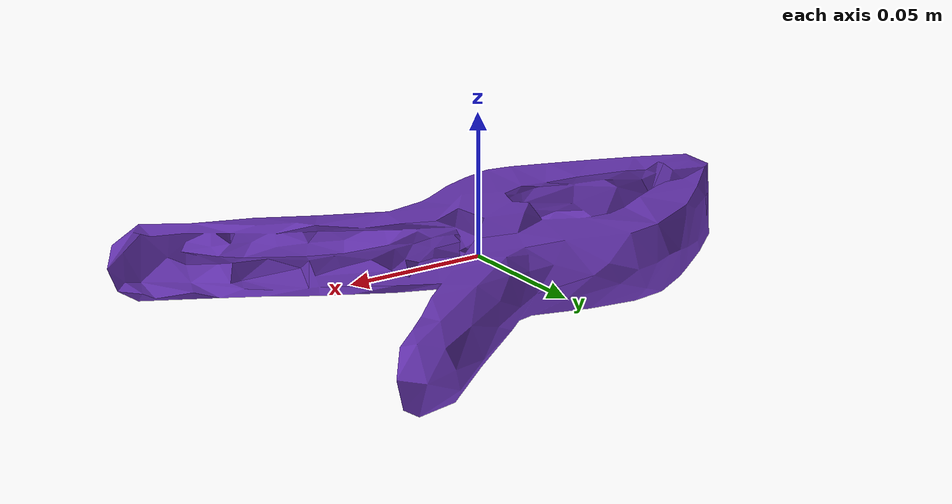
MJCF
<mujoco model="top_watertight_tiny">

  <asset>
    <mesh file="top_watertight_tiny.obj"/>
    <mesh file="top_watertight_tiny_collision_0.obj"/>
    <mesh file="top_watertight_tiny_collision_1.obj"/>
    <mesh file="top_watertight_tiny_collision_2.obj"/>
    <mesh file="top_watertight_tiny_collision_3.obj"/>
    <mesh file="top_watertight_tiny_collision_4.obj"/>
    <mesh file="top_watertight_tiny_collision_5.obj"/>
    <mesh file="top_watertight_tiny_collision_6.obj"/>
    <mesh file="top_watertight_tiny_collision_7.obj"/>
    <mesh file="top_watertight_tiny_collision_8.obj"/>
    <mesh file="top_watertight_tiny_collision_9.obj"/>
    <mesh file="top_watertight_tiny_collision_10.obj"/>
    <mesh file="top_watertight_tiny_collision_11.obj"/>
    <mesh file="top_watertight_tiny_collision_12.obj"/>
    <mesh file="top_watertight_tiny_collision_13.obj"/>
    <mesh file="top_watertight_tiny_collision_14.obj"/>
    <mesh file="top_watertight_tiny_collision_15.obj"/>
    <mesh file="top_watertight_tiny_collision_16.obj"/>
    <mesh file="top_watertight_tiny_collision_17.obj"/>
    <mesh file="top_watertight_tiny_collision_18.obj"/>
    <mesh file="top_watertight_tiny_collision_19.obj"/>
    <mesh file="top_watertight_tiny_collision_20.obj"/>
    <mesh file="top_watertight_tiny_collision_21.obj"/>
    <mesh file="top_watertight_tiny_collision_22.obj"/>
    <mesh file="top_watertight_tiny_collision_23.obj"/>
    <mesh file="top_watertight_tiny_collision_24.obj"/>
    <mesh file="top_watertight_tiny_collision_25.obj"/>
    <mesh file="top_watertight_tiny_collision_26.obj"/>
    <mesh file="top_watertight_tiny_collision_27.obj"/>
    <mesh file="top_watertight_tiny_collision_28.obj"/>
    <mesh file="top_watertight_tiny_collision_29.obj"/>
    <mesh file="top_watertight_tiny_collision_30.obj"/>
    <mesh file="top_watertight_tiny_collision_31.obj"/>
    <mesh file="top_watertight_tiny_collision_32.obj"/>
    <mesh file="top_watertight_tiny_collision_33.obj"/>
    <mesh file="top_watertight_tiny_collision_34.obj"/>
    <mesh file="top_watertight_tiny_collision_35.obj"/>
    <mesh file="top_watertight_tiny_collision_36.obj"/>
    <mesh file="top_watertight_tiny_collision_37.obj"/>
    <mesh file="top_watertight_tiny_collision_38.obj"/>
    <mesh file="top_watertight_tiny_collision_39.obj"/>
    <mesh file="top_watertight_tiny_collision_40.obj"/>
    <mesh file="top_watertight_tiny_collision_41.obj"/>
    <mesh file="top_watertight_tiny_collision_42.obj"/>
    <mesh file="top_watertight_tiny_collision_43.obj"/>
    <mesh file="top_watertight_tiny_collision_44.obj"/>
  </asset>
  <worldbody>
    <body name="top_watertight_tiny">
      <freejoint/>
      <geom solimp="0.90 0.95 0.001" solref="0.02 1.0" density="100" friction="0.95 0.4 0.3" rgba="0.4 0.2 0.7 1" mesh="top_watertight_tiny" group="2" type="mesh" contype="0" conaffinity="0"/>
      <geom solimp="0.90 0.95 0.001" solref="0.02 1.0" density="100" friction="0.95 0.4 0.3" mesh="top_watertight_tiny_collision_0" rgba="0.6692862058523028 0.10845695890546525 0.16505113920831627 1" group="3" type="mesh"/>
      <geom solimp="0.90 0.95 0.001" solref="0.02 1.0" density="100" friction="0.95 0.4 0.3" mesh="top_watertight_tiny_collision_1" rgba="0.2831435461395556 0.41483708267079955 0.7679989196277033 1" group="3" type="mesh"/>
      <geom solimp="0.90 0.95 0.001" solref="0.02 1.0" density="100" friction="0.95 0.4 0.3" mesh="top_watertight_tiny_collision_2" rgba="0.3364125567432267 0.409183538614594 0.7544353324531017 1" group="3" type="mesh"/>
      <geom solimp="0.90 0.95 0.001" solref="0.02 1.0" density="100" friction="0.95 0.4 0.3" mesh="top_watertight_tiny_collision_3" rgba="0.9635463652394096 0.9366260052960367 0.8547682360147899 1" group="3" type="mesh"/>
      <geom solimp="0.90 0.95 0.001" solref="0.02 1.0" density="100" friction="0.95 0.4 0.3" mesh="top_watertight_tiny_collision_4" rgba="0.1855768597915377 0.42894178213192435 0.15799468247967985 1" group="3" type="mesh"/>
      <geom solimp="0.90 0.95 0.001" solref="0.02 1.0" density="100" friction="0.95 0.4 0.3" mesh="top_watertight_tiny_collision_5" rgba="0.7845227375817271 0.00021812241555085876 0.7747267821185437 1" group="3" type="mesh"/>
      <geom solimp="0.90 0.95 0.001" solref="0.02 1.0" density="100" friction="0.95 0.4 0.3" mesh="top_watertight_tiny_collision_6" rgba="0.3277648812251076 0.8683704256148046 0.7173869226529379 1" group="3" type="mesh"/>
      <geom solimp="0.90 0.95 0.001" solref="0.02 1.0" density="100" friction="0.95 0.4 0.3" mesh="top_watertight_tiny_collision_7" rgba="0.6644291472601099 0.9507021678547918 0.48604455137330316 1" group="3" type="mesh"/>
      <geom solimp="0.90 0.95 0.001" solref="0.02 1.0" density="100" friction="0.95 0.4 0.3" mesh="top_watertight_tiny_collision_8" rgba="0.5250556566142492 0.3550164875320113 0.3848988976815907 1" group="3" type="mesh"/>
      <geom solimp="0.90 0.95 0.001" solref="0.02 1.0" density="100" friction="0.95 0.4 0.3" mesh="top_watertight_tiny_collision_9" rgba="0.7680348447795635 0.5570392634005161 0.9702605148002059 1" group="3" type="mesh"/>
      <geom solimp="0.90 0.95 0.001" solref="0.02 1.0" density="100" friction="0.95 0.4 0.3" mesh="top_watertight_tiny_collision_10" rgba="0.5692423320064505 0.6756896201473701 0.8274250876474534 1" group="3" type="mesh"/>
      <geom solimp="0.90 0.95 0.001" solref="0.02 1.0" density="100" friction="0.95 0.4 0.3" mesh="top_watertight_tiny_collision_11" rgba="0.40914576745045195 0.07389423270782725 0.9509166383963242 1" group="3" type="mesh"/>
      <geom solimp="0.90 0.95 0.001" solref="0.02 1.0" density="100" friction="0.95 0.4 0.3" mesh="top_watertight_tiny_collision_12" rgba="0.3435488816522897 0.3123482594332895 0.013387326977379765 1" group="3" type="mesh"/>
      <geom solimp="0.90 0.95 0.001" solref="0.02 1.0" density="100" friction="0.95 0.4 0.3" mesh="top_watertight_tiny_collision_13" rgba="0.15412577940005479 0.30950558158390307 0.5169241736494664 1" group="3" type="mesh"/>
      <geom solimp="0.90 0.95 0.001" solref="0.02 1.0" density="100" friction="0.95 0.4 0.3" mesh="top_watertight_tiny_collision_14" rgba="0.05513106813261004 0.6331098841444155 0.04930660755336591 1" group="3" type="mesh"/>
      <geom solimp="0.90 0.95 0.001" solref="0.02 1.0" density="100" friction="0.95 0.4 0.3" mesh="top_watertight_tiny_collision_15" rgba="0.7222802348137766 0.29009246545922895 0.9531831736505183 1" group="3" type="mesh"/>
      <geom solimp="0.90 0.95 0.001" solref="0.02 1.0" density="100" friction="0.95 0.4 0.3" mesh="top_watertight_tiny_collision_16" rgba="0.3423069346269152 0.18390652302333188 0.10270945665454279 1" group="3" type="mesh"/>
      <geom solimp="0.90 0.95 0.001" solref="0.02 1.0" density="100" friction="0.95 0.4 0.3" mesh="top_watertight_tiny_collision_17" rgba="0.3045826123848471 0.35374613770355 0.5724571574217754 1" group="3" type="mesh"/>
      <geom solimp="0.90 0.95 0.001" solref="0.02 1.0" density="100" friction="0.95 0.4 0.3" mesh="top_watertight_tiny_collision_18" rgba="0.07190081357231326 0.33204479871233816 0.4045225757853831 1" group="3" type="mesh"/>
      <geom solimp="0.90 0.95 0.001" solref="0.02 1.0" density="100" friction="0.95 0.4 0.3" mesh="top_watertight_tiny_collision_19" rgba="0.8939205028070746 0.01229134628823303 0.79004656445743 1" group="3" type="mesh"/>
      <geom solimp="0.90 0.95 0.001" solref="0.02 1.0" density="100" friction="0.95 0.4 0.3" mesh="top_watertight_tiny_collision_20" rgba="0.6702132809548322 0.12257629466259923 0.38512900956127705 1" group="3" type="mesh"/>
      <geom solimp="0.90 0.95 0.001" solref="0.02 1.0" density="100" friction="0.95 0.4 0.3" mesh="top_watertight_tiny_collision_21" rgba="0.3065846088922364 0.87717398533137 0.08459316297472541 1" group="3" type="mesh"/>
      <geom solimp="0.90 0.95 0.001" solref="0.02 1.0" density="100" friction="0.95 0.4 0.3" mesh="top_watertight_tiny_collision_22" rgba="0.3983650532209483 0.9986773937861758 0.6559923150729449 1" group="3" type="mesh"/>
      <geom solimp="0.90 0.95 0.001" solref="0.02 1.0" density="100" friction="0.95 0.4 0.3" mesh="top_watertight_tiny_collision_23" rgba="0.5324878221172643 0.3356200749170182 0.8685699504750006 1" group="3" type="mesh"/>
      <geom solimp="0.90 0.95 0.001" solref="0.02 1.0" density="100" friction="0.95 0.4 0.3" mesh="top_watertight_tiny_collision_24" rgba="0.5933889790450586 0.45878940906198395 0.7836972144959684 1" group="3" type="mesh"/>
      <geom solimp="0.90 0.95 0.001" solref="0.02 1.0" density="100" friction="0.95 0.4 0.3" mesh="top_watertight_tiny_collision_25" rgba="0.6569901841201528 0.6079264093688157 0.836034864724972 1" group="3" type="mesh"/>
      <geom solimp="0.90 0.95 0.001" solref="0.02 1.0" density="100" friction="0.95 0.4 0.3" mesh="top_watertight_tiny_collision_26" rgba="0.41133802007747533 0.5481189897866444 0.6951655081599737 1" group="3" type="mesh"/>
      <geom solimp="0.90 0.95 0.001" solref="0.02 1.0" density="100" friction="0.95 0.4 0.3" mesh="top_watertight_tiny_collision_27" rgba="0.0843177001056673 0.12125584254453836 0.9383648635777316 1" group="3" type="mesh"/>
      <geom solimp="0.90 0.95 0.001" solref="0.02 1.0" density="100" friction="0.95 0.4 0.3" mesh="top_watertight_tiny_collision_28" rgba="0.3072090770733912 0.1789369960573789 0.5895137046771708 1" group="3" type="mesh"/>
      <geom solimp="0.90 0.95 0.001" solref="0.02 1.0" density="100" friction="0.95 0.4 0.3" mesh="top_watertight_tiny_collision_29" rgba="0.8296793556631824 0.7783082319756296 0.5809463286297837 1" group="3" type="mesh"/>
      <geom solimp="0.90 0.95 0.001" solref="0.02 1.0" density="100" friction="0.95 0.4 0.3" mesh="top_watertight_tiny_collision_30" rgba="0.9424812587900054 0.9715126705803075 0.4505027542928617 1" group="3" type="mesh"/>
      <geom solimp="0.90 0.95 0.001" solref="0.02 1.0" density="100" friction="0.95 0.4 0.3" mesh="top_watertight_tiny_collision_31" rgba="0.9219688558624265 0.3526563218224802 0.5994944364643857 1" group="3" type="mesh"/>
      <geom solimp="0.90 0.95 0.001" solref="0.02 1.0" density="100" friction="0.95 0.4 0.3" mesh="top_watertight_tiny_collision_32" rgba="0.5737129505488673 0.5056571861007086 0.29298316224396403 1" group="3" type="mesh"/>
      <geom solimp="0.90 0.95 0.001" solref="0.02 1.0" density="100" friction="0.95 0.4 0.3" mesh="top_watertight_tiny_collision_33" rgba="0.30501220653035577 0.6575900474223397 0.21832358920244377 1" group="3" type="mesh"/>
      <geom solimp="0.90 0.95 0.001" solref="0.02 1.0" density="100" friction="0.95 0.4 0.3" mesh="top_watertight_tiny_collision_34" rgba="0.101239469991114 0.4828678699311949 0.010163142502855438 1" group="3" type="mesh"/>
      <geom solimp="0.90 0.95 0.001" solref="0.02 1.0" density="100" friction="0.95 0.4 0.3" mesh="top_watertight_tiny_collision_35" rgba="0.5345519673442177 0.6403234676709081 0.4070286566329354 1" group="3" type="mesh"/>
      <geom solimp="0.90 0.95 0.001" solref="0.02 1.0" density="100" friction="0.95 0.4 0.3" mesh="top_watertight_tiny_collision_36" rgba="0.9048219565756463 0.35989078919062456 0.9751170119691617 1" group="3" type="mesh"/>
      <geom solimp="0.90 0.95 0.001" solref="0.02 1.0" density="100" friction="0.95 0.4 0.3" mesh="top_watertight_tiny_collision_37" rgba="0.43254968787547354 0.6482855407136828 0.4901476310869275 1" group="3" type="mesh"/>
      <geom solimp="0.90 0.95 0.001" solref="0.02 1.0" density="100" friction="0.95 0.4 0.3" mesh="top_watertight_tiny_collision_38" rgba="0.6851541232251341 0.5240865099176152 0.7706203211826284 1" group="3" type="mesh"/>
      <geom solimp="0.90 0.95 0.001" solref="0.02 1.0" density="100" friction="0.95 0.4 0.3" mesh="top_watertight_tiny_collision_39" rgba="0.1011855829263757 0.47037898627773844 0.6559534387264697 1" group="3" type="mesh"/>
      <geom solimp="0.90 0.95 0.001" solref="0.02 1.0" density="100" friction="0.95 0.4 0.3" mesh="top_watertight_tiny_collision_40" rgba="0.11795796983802953 0.6543943011437067 0.04633797467533041 1" group="3" type="mesh"/>
      <geom solimp="0.90 0.95 0.001" solref="0.02 1.0" density="100" friction="0.95 0.4 0.3" mesh="top_watertight_tiny_collision_41" rgba="0.4051592109729282 0.6770203818461166 0.26560506386385185 1" group="3" type="mesh"/>
      <geom solimp="0.90 0.95 0.001" solref="0.02 1.0" density="100" friction="0.95 0.4 0.3" mesh="top_watertight_tiny_collision_42" rgba="0.6015263115905736 0.44657867769819337 0.0624596044641611 1" group="3" type="mesh"/>
      <geom solimp="0.90 0.95 0.001" solref="0.02 1.0" density="100" friction="0.95 0.4 0.3" mesh="top_watertight_tiny_collision_43" rgba="0.9424883741376623 0.4059404788979146 0.8037239249629973 1" group="3" type="mesh"/>
      <geom solimp="0.90 0.95 0.001" solref="0.02 1.0" density="100" friction="0.95 0.4 0.3" mesh="top_watertight_tiny_collision_44" rgba="0.42027897733739605 0.08084154065725357 0.6410306983193729 1" group="3" type="mesh"/>
    </body>
  </worldbody>
</mujoco>
